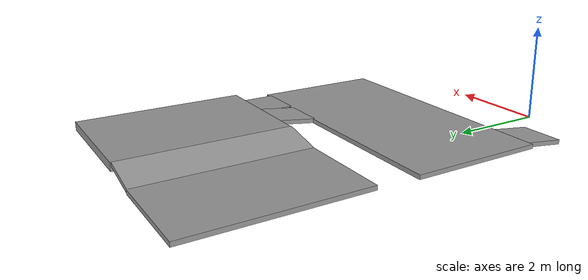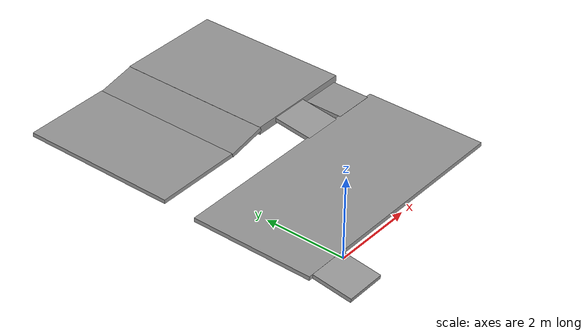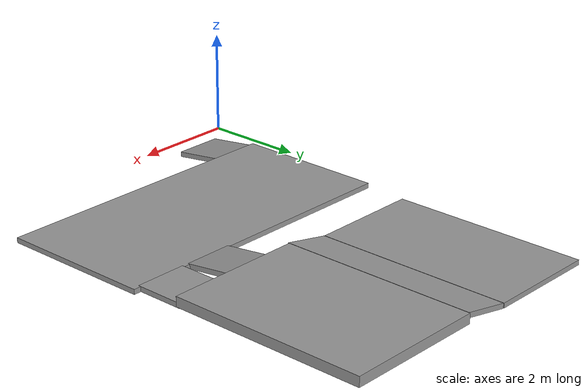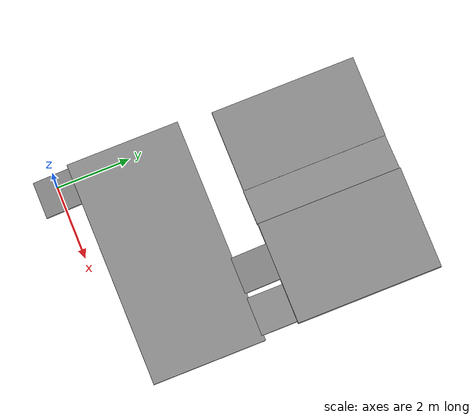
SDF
<?xml version='1.0'?>
<sdf version='1.7'>
  <model name='R2'>
    <link name='link_10'>
      <inertial>
        <mass>1</mass>
        <inertia>
          <ixx>0.166667</ixx>
          <ixy>0</ixy>
          <ixz>0</ixz>
          <iyy>0.166667</iyy>
          <iyz>0</iyz>
          <izz>0.166667</izz>
        </inertia>
        <pose>0 0 0 0 -0 0</pose>
      </inertial>
      <pose>2.30011 6.47235 -0.356541 0.000257 -0.201189 -5.5e-05</pose>
      <gravity>1</gravity>
      <self_collide>0</self_collide>
      <kinematic>0</kinematic>
      <enable_wind>0</enable_wind>
      <visual name='visual'>
        <pose>0 0 0 0 -0 0</pose>
        <geometry>
          <box>
            <size>1 4 0.1</size>
          </box>
        </geometry>
        <material>
          <lighting>1</lighting>
          <script>
            <uri>file://media/materials/scripts/gazebo.material</uri>
            <name>Gazebo/Grey</name>
          </script>
          <shader type='pixel'>
            <normal_map>__default__</normal_map>
          </shader>
          <ambient>0.3 0.3 0.3 1</ambient>
          <diffuse>0.7 0.7 0.7 1</diffuse>
          <specular>0.01 0.01 0.01 1</specular>
          <emissive>0 0 0 1</emissive>
        </material>
        <transparency>0</transparency>
        <cast_shadows>1</cast_shadows>
      </visual>
      <collision name='collision'>
        <laser_retro>0</laser_retro>
        <max_contacts>10</max_contacts>
        <pose>0 0 0 0 -0 0</pose>
        <geometry>
          <box>
            <size>1 4 0.1</size>
          </box>
        </geometry>
        <surface>
          <friction>
            <ode>
              <mu>1</mu>
              <mu2>1</mu2>
              <fdir1>0 0 0</fdir1>
              <slip1>0</slip1>
              <slip2>0</slip2>
            </ode>
            <torsional>
              <coefficient>1</coefficient>
              <patch_radius>0</patch_radius>
              <surface_radius>0</surface_radius>
              <use_patch_radius>1</use_patch_radius>
              <ode>
                <slip>0</slip>
              </ode>
            </torsional>
          </friction>
          <bounce>
            <restitution_coefficient>0</restitution_coefficient>
            <threshold>1e+06</threshold>
          </bounce>
          <contact>
            <collide_without_contact>0</collide_without_contact>
            <collide_without_contact_bitmask>1</collide_without_contact_bitmask>
            <collide_bitmask>1</collide_bitmask>
            <ode>
              <soft_cfm>0</soft_cfm>
              <soft_erp>0.2</soft_erp>
              <kp>1e+13</kp>
              <kd>1</kd>
              <max_vel>0.01</max_vel>
              <min_depth>0</min_depth>
            </ode>
            <bullet>
              <split_impulse>1</split_impulse>
              <split_impulse_penetration_threshold>-0.01</split_impulse_penetration_threshold>
              <soft_cfm>0</soft_cfm>
              <soft_erp>0.2</soft_erp>
              <kp>1e+13</kp>
              <kd>1</kd>
            </bullet>
          </contact>
        </surface>
      </collision>
    </link>
    <link name='link_11'>
      <inertial>
        <mass>1</mass>
        <inertia>
          <ixx>0.166667</ixx>
          <ixy>0</ixy>
          <ixz>0</ixz>
          <iyy>0.166667</iyy>
          <iyz>0</iyz>
          <izz>0.166667</izz>
        </inertia>
        <pose>0 0 0 0 -0 0</pose>
      </inertial>
      <pose>4.18451 6.4937 -0.309943 0.000252 -0 -4e-06</pose>
      <gravity>1</gravity>
      <self_collide>0</self_collide>
      <kinematic>0</kinematic>
      <enable_wind>0</enable_wind>
      <visual name='visual'>
        <pose>0 0 0 0 -0 0</pose>
        <geometry>
          <box>
            <size>2.8 4 0.2</size>
          </box>
        </geometry>
        <material>
          <lighting>1</lighting>
          <script>
            <uri>file://media/materials/scripts/gazebo.material</uri>
            <name>Gazebo/Grey</name>
          </script>
          <shader type='pixel'>
            <normal_map>__default__</normal_map>
          </shader>
          <ambient>0.3 0.3 0.3 1</ambient>
          <diffuse>0.7 0.7 0.7 1</diffuse>
          <specular>0.01 0.01 0.01 1</specular>
          <emissive>0 0 0 1</emissive>
        </material>
        <transparency>0</transparency>
        <cast_shadows>1</cast_shadows>
      </visual>
      <collision name='collision'>
        <laser_retro>0</laser_retro>
        <max_contacts>10</max_contacts>
        <pose>0 0 0 0 -0 0</pose>
        <geometry>
          <box>
            <size>2.8 4 0.2</size>
          </box>
        </geometry>
        <surface>
          <friction>
            <ode>
              <mu>1</mu>
              <mu2>1</mu2>
              <fdir1>0 0 0</fdir1>
              <slip1>0</slip1>
              <slip2>0</slip2>
            </ode>
            <torsional>
              <coefficient>1</coefficient>
              <patch_radius>0</patch_radius>
              <surface_radius>0</surface_radius>
              <use_patch_radius>1</use_patch_radius>
              <ode>
                <slip>0</slip>
              </ode>
            </torsional>
          </friction>
          <bounce>
            <restitution_coefficient>0</restitution_coefficient>
            <threshold>1e+06</threshold>
          </bounce>
          <contact>
            <collide_without_contact>0</collide_without_contact>
            <collide_without_contact_bitmask>1</collide_without_contact_bitmask>
            <collide_bitmask>1</collide_bitmask>
            <ode>
              <soft_cfm>0</soft_cfm>
              <soft_erp>0.2</soft_erp>
              <kp>1e+13</kp>
              <kd>1</kd>
              <max_vel>0.01</max_vel>
              <min_depth>0</min_depth>
            </ode>
            <bullet>
              <split_impulse>1</split_impulse>
              <split_impulse_penetration_threshold>-0.01</split_impulse_penetration_threshold>
              <soft_cfm>0</soft_cfm>
              <soft_erp>0.2</soft_erp>
              <kp>1e+13</kp>
              <kd>1</kd>
            </bullet>
          </contact>
        </surface>
      </collision>
    </link>
    <link name='link_2_clone'>
      <inertial>
        <mass>0.60023</mass>
        <inertia>
          <ixx>0.06804</ixx>
          <ixy>0</ixy>
          <ixz>0</ixz>
          <iyy>0.06804</iyy>
          <iyz>0</iyz>
          <izz>0.100038</izz>
        </inertia>
        <pose>0 0 0 0 -0 0</pose>
      </inertial>
      <pose>0.05985 -0.045498 -0.48706 0.128317 -0 -8e-06</pose>
      <gravity>1</gravity>
      <self_collide>0</self_collide>
      <kinematic>0</kinematic>
      <enable_wind>0</enable_wind>
      <visual name='visual'>
        <pose>0 0 0 0 -0 0</pose>
        <geometry>
          <box>
            <size>1 1 0.1</size>
          </box>
        </geometry>
        <material>
          <lighting>1</lighting>
          <script>
            <uri>file://media/materials/scripts/gazebo.material</uri>
            <name>Gazebo/Grey</name>
          </script>
          <shader type='pixel'>
            <normal_map>__default__</normal_map>
          </shader>
          <ambient>0.3 0.3 0.3 1</ambient>
          <diffuse>0.7 0.7 0.7 1</diffuse>
          <specular>0.01 0.01 0.01 1</specular>
          <emissive>0 0 0 1</emissive>
        </material>
        <transparency>0</transparency>
        <cast_shadows>1</cast_shadows>
      </visual>
      <collision name='collision'>
        <laser_retro>0</laser_retro>
        <max_contacts>10</max_contacts>
        <pose>0 0 0 0 -0 0</pose>
        <geometry>
          <box>
            <size>1 1 0.1</size>
          </box>
        </geometry>
        <surface>
          <friction>
            <ode>
              <mu>1</mu>
              <mu2>1</mu2>
              <fdir1>0 0 0</fdir1>
              <slip1>0</slip1>
              <slip2>0</slip2>
            </ode>
            <torsional>
              <coefficient>1</coefficient>
              <patch_radius>0</patch_radius>
              <surface_radius>0</surface_radius>
              <use_patch_radius>1</use_patch_radius>
              <ode>
                <slip>0</slip>
              </ode>
            </torsional>
          </friction>
          <bounce>
            <restitution_coefficient>0</restitution_coefficient>
            <threshold>1e+06</threshold>
          </bounce>
          <contact>
            <collide_without_contact>0</collide_without_contact>
            <collide_without_contact_bitmask>1</collide_without_contact_bitmask>
            <collide_bitmask>1</collide_bitmask>
            <ode>
              <soft_cfm>0</soft_cfm>
              <soft_erp>0.2</soft_erp>
              <kp>1e+13</kp>
              <kd>1</kd>
              <max_vel>0.01</max_vel>
              <min_depth>0</min_depth>
            </ode>
            <bullet>
              <split_impulse>1</split_impulse>
              <split_impulse_penetration_threshold>-0.01</split_impulse_penetration_threshold>
              <soft_cfm>0</soft_cfm>
              <soft_erp>0.2</soft_erp>
              <kp>1e+13</kp>
              <kd>1</kd>
            </bullet>
          </contact>
        </surface>
      </collision>
    </link>
    <link name='link_2_clone_clone'>
      <inertial>
        <mass>0.60023</mass>
        <inertia>
          <ixx>0.06804</ixx>
          <ixy>0</ixy>
          <ixz>0</ixz>
          <iyy>0.06804</iyy>
          <iyz>0</iyz>
          <izz>0.100038</izz>
        </inertia>
        <pose>0 0 0 0 -0 0</pose>
      </inertial>
      <pose>3.8395 4.01243 -0.357864 0.128569 -0 -1.2e-05</pose>
      <gravity>1</gravity>
      <self_collide>0</self_collide>
      <kinematic>0</kinematic>
      <enable_wind>0</enable_wind>
      <visual name='visual'>
        <pose>0 0 0 0 -0 0</pose>
        <geometry>
          <box>
            <size>1 1 0.1</size>
          </box>
        </geometry>
        <material>
          <lighting>1</lighting>
          <script>
            <uri>file://media/materials/scripts/gazebo.material</uri>
            <name>Gazebo/Grey</name>
          </script>
          <shader type='pixel'>
            <normal_map>__default__</normal_map>
          </shader>
          <ambient>0.3 0.3 0.3 1</ambient>
          <diffuse>0.7 0.7 0.7 1</diffuse>
          <specular>0.01 0.01 0.01 1</specular>
          <emissive>0 0 0 1</emissive>
        </material>
        <transparency>0</transparency>
        <cast_shadows>1</cast_shadows>
      </visual>
      <collision name='collision'>
        <laser_retro>0</laser_retro>
        <max_contacts>10</max_contacts>
        <pose>0 0 0 0 -0 0</pose>
        <geometry>
          <box>
            <size>1 1 0.1</size>
          </box>
        </geometry>
        <surface>
          <friction>
            <ode>
              <mu>1</mu>
              <mu2>1</mu2>
              <fdir1>0 0 0</fdir1>
              <slip1>0</slip1>
              <slip2>0</slip2>
            </ode>
            <torsional>
              <coefficient>1</coefficient>
              <patch_radius>0</patch_radius>
              <surface_radius>0</surface_radius>
              <use_patch_radius>1</use_patch_radius>
              <ode>
                <slip>0</slip>
              </ode>
            </torsional>
          </friction>
          <bounce>
            <restitution_coefficient>0</restitution_coefficient>
            <threshold>1e+06</threshold>
          </bounce>
          <contact>
            <collide_without_contact>0</collide_without_contact>
            <collide_without_contact_bitmask>1</collide_without_contact_bitmask>
            <collide_bitmask>1</collide_bitmask>
            <ode>
              <soft_cfm>0</soft_cfm>
              <soft_erp>0.2</soft_erp>
              <kp>1e+13</kp>
              <kd>1</kd>
              <max_vel>0.01</max_vel>
              <min_depth>0</min_depth>
            </ode>
            <bullet>
              <split_impulse>1</split_impulse>
              <split_impulse_penetration_threshold>-0.01</split_impulse_penetration_threshold>
              <soft_cfm>0</soft_cfm>
              <soft_erp>0.2</soft_erp>
              <kp>1e+13</kp>
              <kd>1</kd>
            </bullet>
          </contact>
        </surface>
      </collision>
    </link>
    <link name='link_3'>
      <inertial>
        <mass>1.93055</mass>
        <inertia>
          <ixx>1.55796</ixx>
          <ixy>0</ixy>
          <ixz>0</ixz>
          <iyy>6.19964</iyy>
          <iyz>0</iyz>
          <izz>7.75438</izz>
        </inertia>
        <pose>0 0 0 0 -0 0</pose>
      </inertial>
      <pose>2.56191 2.0005 -0.422899 0.000252 -0 -4e-06</pose>
      <visual name='visual'>
        <pose>0 0 0 0 -0 0</pose>
        <geometry>
          <box>
            <size>6.20693 3.11031 0.1</size>
          </box>
        </geometry>
        <material>
          <lighting>1</lighting>
          <script>
            <uri>file://media/materials/scripts/gazebo.material</uri>
            <name>Gazebo/Grey</name>
          </script>
          <shader type='pixel'/>
        </material>
        <transparency>0</transparency>
        <cast_shadows>1</cast_shadows>
      </visual>
      <collision name='collision'>
        <laser_retro>0</laser_retro>
        <max_contacts>10</max_contacts>
        <pose>0 0 0 0 -0 0</pose>
        <geometry>
          <box>
            <size>6.20693 3.11031 0.1</size>
          </box>
        </geometry>
        <surface>
          <friction>
            <ode>
              <mu>1</mu>
              <mu2>1</mu2>
              <fdir1>0 0 0</fdir1>
              <slip1>0</slip1>
              <slip2>0</slip2>
            </ode>
            <torsional>
              <coefficient>1</coefficient>
              <patch_radius>0</patch_radius>
              <surface_radius>0</surface_radius>
              <use_patch_radius>1</use_patch_radius>
              <ode>
                <slip>0</slip>
              </ode>
            </torsional>
          </friction>
          <bounce>
            <restitution_coefficient>0</restitution_coefficient>
            <threshold>1e+06</threshold>
          </bounce>
          <contact>
            <collide_without_contact>0</collide_without_contact>
            <collide_without_contact_bitmask>1</collide_without_contact_bitmask>
            <collide_bitmask>1</collide_bitmask>
            <ode>
              <soft_cfm>0</soft_cfm>
              <soft_erp>0.2</soft_erp>
              <kp>1e+13</kp>
              <kd>1</kd>
              <max_vel>0.01</max_vel>
              <min_depth>0</min_depth>
            </ode>
            <bullet>
              <split_impulse>1</split_impulse>
              <split_impulse_penetration_threshold>-0.01</split_impulse_penetration_threshold>
              <soft_cfm>0</soft_cfm>
              <soft_erp>0.2</soft_erp>
              <kp>1e+13</kp>
              <kd>1</kd>
            </bullet>
          </contact>
        </surface>
      </collision>
    </link>
    <link name='link_7'>
      <inertial>
        <mass>1.049</mass>
        <inertia>
          <ixx>0.0882908</ixx>
          <ixy>0</ixy>
          <ixz>0</ixz>
          <iyy>0.0970675</iyy>
          <iyz>0</iyz>
          <izz>0.18361</izz>
        </inertia>
        <pose>0 0 0 0 -0 0</pose>
      </inertial>
      <pose>4.99327 4.00597 -0.417864 0.000252 -0 -4e-06</pose>
      <gravity>1</gravity>
      <self_collide>0</self_collide>
      <kinematic>0</kinematic>
      <enable_wind>0</enable_wind>
      <visual name='visual'>
        <pose>0 0 0 0 -0 0</pose>
        <geometry>
          <box>
            <size>1.049 1 0.1</size>
          </box>
        </geometry>
        <material>
          <lighting>1</lighting>
          <script>
            <uri>file://media/materials/scripts/gazebo.material</uri>
            <name>Gazebo/Grey</name>
          </script>
          <shader type='pixel'>
            <normal_map>__default__</normal_map>
          </shader>
          <ambient>0.3 0.3 0.3 1</ambient>
          <diffuse>0.7 0.7 0.7 1</diffuse>
          <specular>0.01 0.01 0.01 1</specular>
          <emissive>0 0 0 1</emissive>
        </material>
        <transparency>0</transparency>
        <cast_shadows>1</cast_shadows>
      </visual>
      <collision name='collision'>
        <laser_retro>0</laser_retro>
        <max_contacts>10</max_contacts>
        <pose>0 0 0 0 -0 0</pose>
        <geometry>
          <box>
            <size>1.049 1 0.1</size>
          </box>
        </geometry>
        <surface>
          <friction>
            <ode>
              <mu>1</mu>
              <mu2>1</mu2>
              <fdir1>0 0 0</fdir1>
              <slip1>0</slip1>
              <slip2>0</slip2>
            </ode>
            <torsional>
              <coefficient>1</coefficient>
              <patch_radius>0</patch_radius>
              <surface_radius>0</surface_radius>
              <use_patch_radius>1</use_patch_radius>
              <ode>
                <slip>0</slip>
              </ode>
            </torsional>
          </friction>
          <bounce>
            <restitution_coefficient>0</restitution_coefficient>
            <threshold>1e+06</threshold>
          </bounce>
          <contact>
            <collide_without_contact>0</collide_without_contact>
            <collide_without_contact_bitmask>1</collide_without_contact_bitmask>
            <collide_bitmask>1</collide_bitmask>
            <ode>
              <soft_cfm>0</soft_cfm>
              <soft_erp>0.2</soft_erp>
              <kp>1e+13</kp>
              <kd>1</kd>
              <max_vel>0.01</max_vel>
              <min_depth>0</min_depth>
            </ode>
            <bullet>
              <split_impulse>1</split_impulse>
              <split_impulse_penetration_threshold>-0.01</split_impulse_penetration_threshold>
              <soft_cfm>0</soft_cfm>
              <soft_erp>0.2</soft_erp>
              <kp>1e+13</kp>
              <kd>1</kd>
            </bullet>
          </contact>
        </surface>
      </collision>
    </link>
    <link name='link_8'>
      <inertial>
        <mass>1</mass>
        <inertia>
          <ixx>0.166667</ixx>
          <ixy>0</ixy>
          <ixz>0</ixz>
          <iyy>0.166667</iyy>
          <iyz>0</iyz>
          <izz>0.166667</izz>
        </inertia>
        <pose>0 0 0 0 -0 0</pose>
      </inertial>
      <pose>0.682815 6.48353 -0.450723 0.000252 -0 -4e-06</pose>
      <gravity>1</gravity>
      <self_collide>0</self_collide>
      <kinematic>0</kinematic>
      <enable_wind>0</enable_wind>
      <visual name='visual'>
        <pose>0 0 0 0 -0 0</pose>
        <geometry>
          <box>
            <size>2.25 4 0.1</size>
          </box>
        </geometry>
        <material>
          <lighting>1</lighting>
          <script>
            <uri>file://media/materials/scripts/gazebo.material</uri>
            <name>Gazebo/Grey</name>
          </script>
          <shader type='pixel'>
            <normal_map>__default__</normal_map>
          </shader>
          <ambient>0.3 0.3 0.3 1</ambient>
          <diffuse>0.7 0.7 0.7 1</diffuse>
          <specular>0.01 0.01 0.01 1</specular>
          <emissive>0 0 0 1</emissive>
        </material>
        <transparency>0</transparency>
        <cast_shadows>1</cast_shadows>
      </visual>
      <collision name='collision'>
        <laser_retro>0</laser_retro>
        <max_contacts>10</max_contacts>
        <pose>0 0 0 0 -0 0</pose>
        <geometry>
          <box>
            <size>2.25 4 0.1</size>
          </box>
        </geometry>
        <surface>
          <friction>
            <ode>
              <mu>1</mu>
              <mu2>1</mu2>
              <fdir1>0 0 0</fdir1>
              <slip1>0</slip1>
              <slip2>0</slip2>
            </ode>
            <torsional>
              <coefficient>1</coefficient>
              <patch_radius>0</patch_radius>
              <surface_radius>0</surface_radius>
              <use_patch_radius>1</use_patch_radius>
              <ode>
                <slip>0</slip>
              </ode>
            </torsional>
          </friction>
          <bounce>
            <restitution_coefficient>0</restitution_coefficient>
            <threshold>1e+06</threshold>
          </bounce>
          <contact>
            <collide_without_contact>0</collide_without_contact>
            <collide_without_contact_bitmask>1</collide_without_contact_bitmask>
            <collide_bitmask>1</collide_bitmask>
            <ode>
              <soft_cfm>0</soft_cfm>
              <soft_erp>0.2</soft_erp>
              <kp>1e+13</kp>
              <kd>1</kd>
              <max_vel>0.01</max_vel>
              <min_depth>0</min_depth>
            </ode>
            <bullet>
              <split_impulse>1</split_impulse>
              <split_impulse_penetration_threshold>-0.01</split_impulse_penetration_threshold>
              <soft_cfm>0</soft_cfm>
              <soft_erp>0.2</soft_erp>
              <kp>1e+13</kp>
              <kd>1</kd>
            </bullet>
          </contact>
        </surface>
      </collision>
    </link>
    <static>0</static>
    <allow_auto_disable>1</allow_auto_disable>
  </model>
</sdf>
